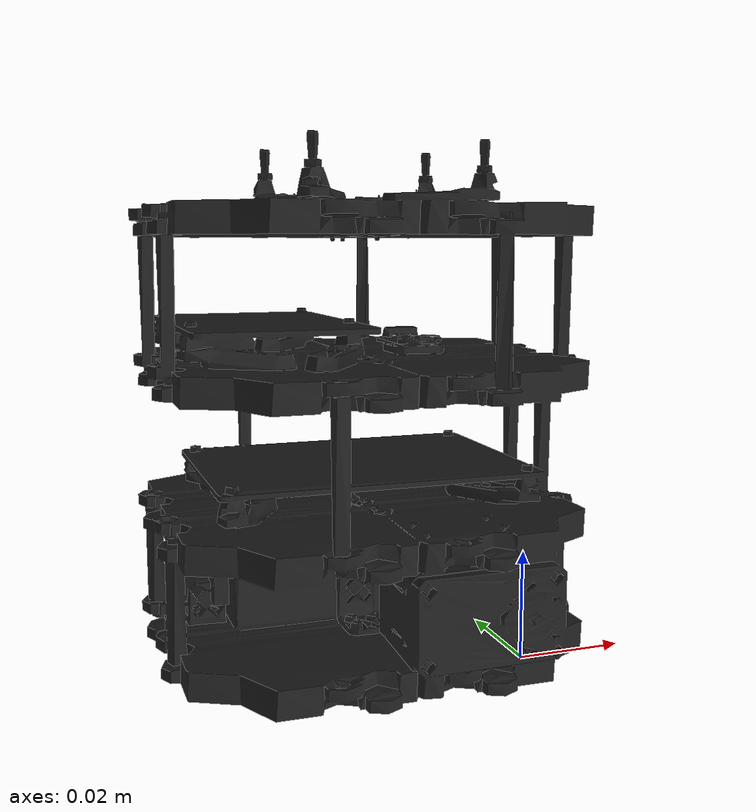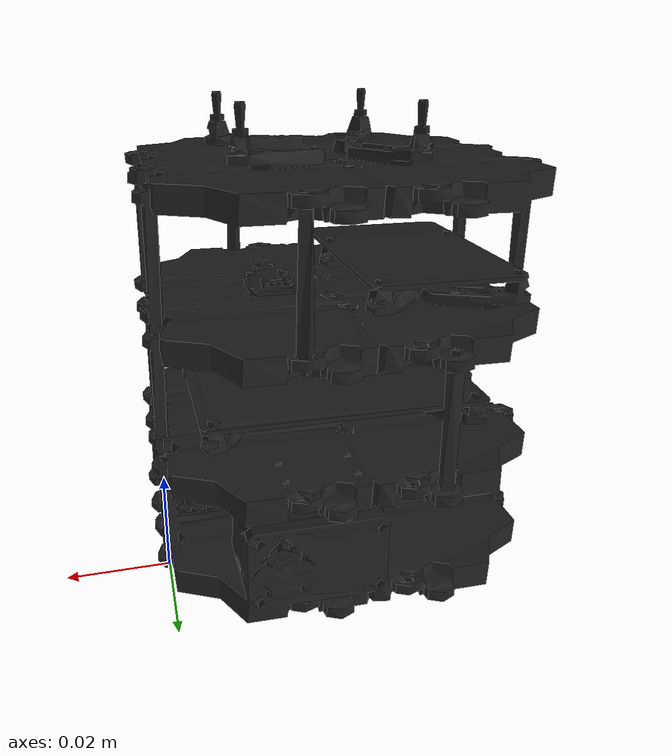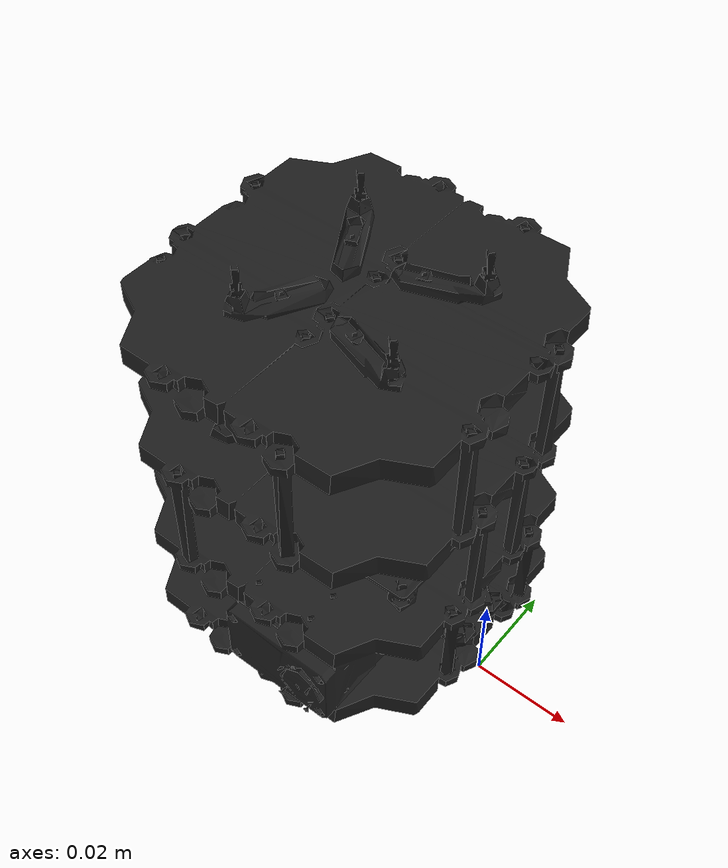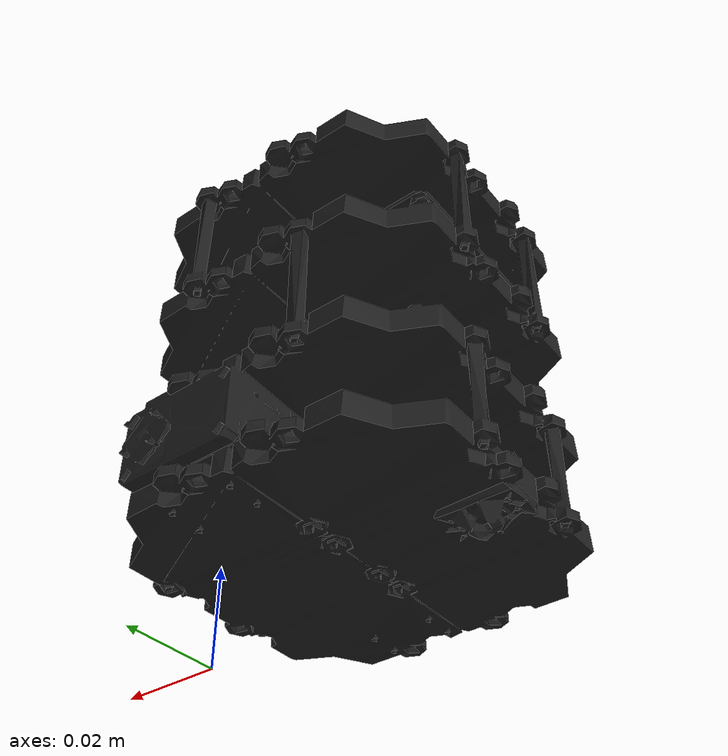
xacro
<?xml version="1.0" ?>
<robot name="turtlebot3_burger_for_autorace" xmlns:xacro="http://ros.org/wiki/xacro">
  <xacro:include filename="$(find turtlebot3_description)/urdf/common_properties.xacro"/>
  <xacro:include filename="$(find turtlebot3_description)/urdf/newbot.gazebo.xacro"/>

  <link name="base_footprint"/>

  <joint name="base_joint" type="fixed">
    <parent link="base_footprint"/>
    <child link="base_link"/>
    <origin xyz="0.0 0.0 0.010" rpy="0 0 0"/>
  </joint>

  <link name="base_link">
    <visual>
      <origin xyz="-0.032 0 0.0" rpy="0 0 0"/>
      <geometry>
        <mesh filename="package://turtlebot3_description/meshes/bases/burger_base.stl" scale="0.0005 0.0005 0.0005"/>
      </geometry>
      <material name="light_black"/>
    </visual>

    <collision>
      <origin xyz="-0.032 0 0.070" rpy="0 0 0"/>
      <geometry>
        <box size="0.140 0.140 0.143"/>
      </geometry>
    </collision>

    <inertial>
      <origin xyz="0 0 0" rpy="0 0 0"/>
      <mass value="8.2573504e-01"/>
      <inertia ixx="2.2124416e-03" ixy="-1.2294101e-05" ixz="3.4938785e-05"
               iyy="2.1193702e-03" iyz="-5.0120904e-06"
               izz="2.0064271e-03" />
    </inertial>
  </link>

  <joint name="camera_joint" type="fixed">
    <origin xyz="0.040 -0.011 0.130" rpy="0 0.52 0"/>
    <parent link="base_link"/>
    <child link="camera_link"/>
  </joint>

  <link name="camera_link">
    <collision>
      <origin xyz="0.005 0.011 0.013" rpy="0 0 0"/>
      <geometry>
        <box size="0.015 0.030 0.027"/>
      </geometry>
    </collision>
  </link>

  <joint name="camera_rgb_joint" type="fixed">
    <origin xyz="0.003 0.011 0.009" rpy="0 0 0"/>
    <parent link="camera_link"/>
    <child link="camera_rgb_frame"/>
  </joint>
  <link name="camera_rgb_frame"/>

  <joint name="camera_rgb_optical_joint" type="fixed">
    <origin xyz="0 0 0" rpy="-1.57 0 -1.57"/>
    <parent link="camera_rgb_frame"/>
    <child link="camera_rgb_optical_frame"/>
  </joint>
  <link name="camera_rgb_optical_frame"/>
</robot>
